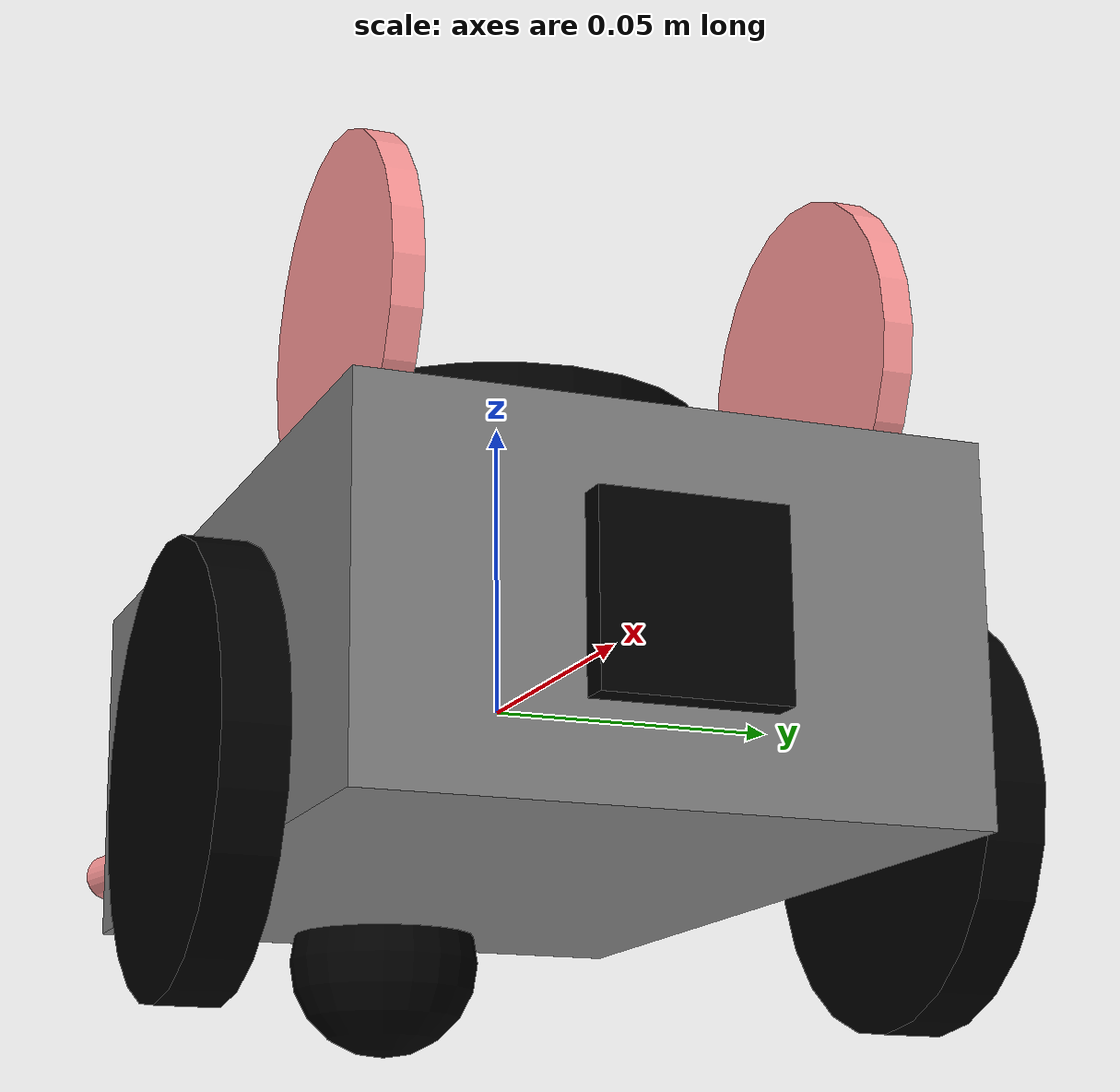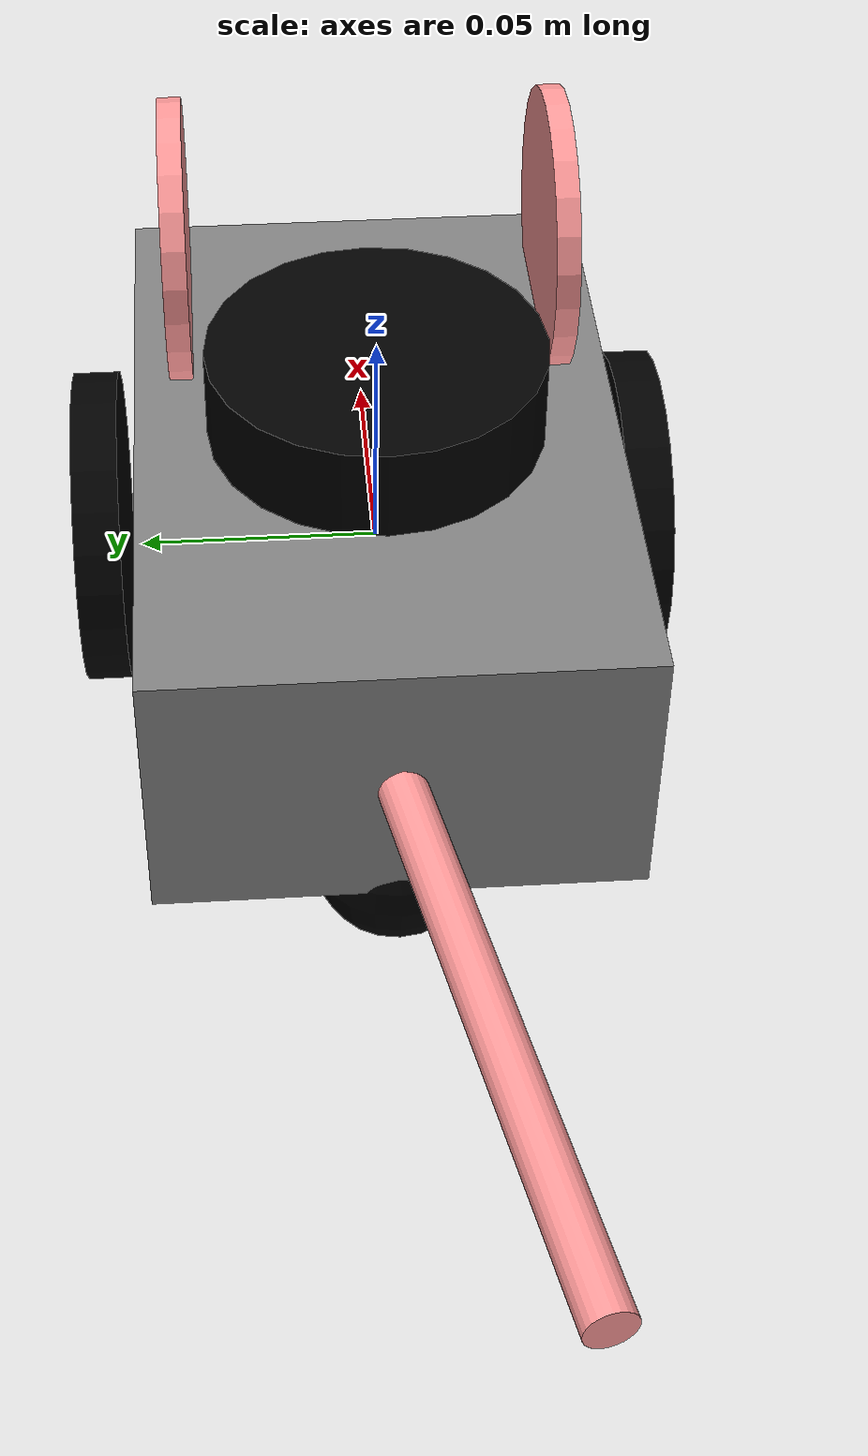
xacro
<?xml version="1.0"?>
<robot name="squeak_mouse" xmlns:xacro="http://www.ros.org/wiki/xacro">

    <xacro:property name="body_len" value="0.15"/>
    <xacro:property name="body_width" value="0.10"/>
    <xacro:property name="body_height" value="0.06"/>
    <xacro:property name="body_mass" value="0.5"/>

    <xacro:property name="wheel_radius" value="0.035"/>
    <xacro:property name="wheel_width" value="0.01"/>
    <xacro:property name="wheel_mass" value="0.1"/>

    <material name="grey">
        <color rgba="0.5 0.5 0.5 1"/>
    </material>
    <material name="pink">
        <color rgba="1 0.6 0.6 1"/> </material>
    <material name="black">
        <color rgba="0 0 0 1"/>
    </material>

    <xacro:macro name="box_inertia" params="m x y z">
        <inertial>
            <mass value="${m}"/>
            <inertia ixx="${m*(y*y+z*z)/12}" ixy="0" ixz="0"
                     iyy="${m*(x*x+z*z)/12}" iyz="0"
                     izz="${m*(x*x+y*y)/12}"/>
        </inertial>
    </xacro:macro>

    <xacro:macro name="cylinder_inertia" params="m r h">
        <inertial>
            <mass value="${m}"/>
            <inertia ixx="${m*(3*r*r+h*h)/12}" ixy="0" ixz="0"
                     iyy="${m*(3*r*r+h*h)/12}" iyz="0"
                     izz="${m*r*r/2}"/>
        </inertial>
    </xacro:macro>

    <xacro:macro name="sphere_inertia" params="m r">
        <inertial>
            <mass value="${m}"/>
            <inertia ixx="${2*m*r*r/5}" ixy="0" ixz="0"
                     iyy="${2*m*r*r/5}" iyz="0"
                     izz="${2*m*r*r/5}"/>
        </inertial>
    </xacro:macro>

    <link name="base_link">
        <visual>
            <geometry><box size="${body_len} ${body_width} ${body_height}"/></geometry>
            <material name="grey"/>
        </visual>
        <collision>
            <geometry><box size="${body_len} ${body_width} ${body_height}"/></geometry>
        </collision>
        <xacro:box_inertia m="${body_mass}" x="${body_len}" y="${body_width}" z="${body_height}"/>
    </link>

    <gazebo reference="base_link">
        <material>Gazebo/Grey</material>
    </gazebo>

    <xacro:macro name="ear" params="prefix y_pos">
        <link name="${prefix}_ear">
            <visual>
                <origin xyz="0 0 0" rpy="1.5707 0 0"/>
                <geometry><cylinder radius="0.03" length="0.005"/></geometry>
                <material name="pink"/>
            </visual>
            <xacro:cylinder_inertia m="0.05" r="0.03" h="0.005"/>
        </link>

        <joint name="${prefix}_ear_joint" type="fixed">
            <parent link="base_link"/>
            <child link="${prefix}_ear"/>
            <origin xyz="0.04 ${y_pos} ${body_height/2 + 0.02}" rpy="0 0 0"/>
        </joint>

        <gazebo reference="${prefix}_ear">
            <material>Gazebo/RedBright</material>
        </gazebo>
    </xacro:macro>

    <xacro:ear prefix="left" y_pos="0.04"/>
    <xacro:ear prefix="right" y_pos="-0.04"/>

    <link name="tail">
        <visual>
            <origin xyz="-0.06 0 0" rpy="0 1.57 0"/> <geometry><cylinder radius="0.005" length="0.12"/></geometry>
            <material name="pink"/>
        </visual>
        <xacro:cylinder_inertia m="0.05" r="0.005" h="0.12"/>
    </link>

    <joint name="tail_joint" type="fixed">
        <parent link="base_link"/>
        <child link="tail"/>
        <origin xyz="-${body_len/2} 0 0" rpy="0 0 0.2"/> </joint>

    <xacro:macro name="wheel" params="prefix y_pos">
        <link name="${prefix}_wheel">
            <visual>
                <origin xyz="0 0 0" rpy="1.5707 0 0"/>
                <geometry><cylinder radius="${wheel_radius}" length="${wheel_width}"/></geometry>
                <material name="black"/>
            </visual>
            <collision>
                <origin xyz="0 0 0" rpy="1.5707 0 0"/>
                <geometry><cylinder radius="${wheel_radius}" length="${wheel_width}"/></geometry>
            </collision>
            <xacro:cylinder_inertia m="${wheel_mass}" r="${wheel_radius}" h="${wheel_width}"/>
        </link>

        <joint name="${prefix}_wheel_joint" type="continuous">
            <parent link="base_link"/>
            <child link="${prefix}_wheel"/>
            <origin xyz="0.03 ${y_pos} -0.02" rpy="0 0 0"/> <axis xyz="0 1 0"/>
        </joint>

        <gazebo reference="${prefix}_wheel">
            <material>Gazebo/Black</material>
        </gazebo>
    </xacro:macro>

    <xacro:wheel prefix="left" y_pos="0.06"/>
    <xacro:wheel prefix="right" y_pos="-0.06"/>

    <link name="caster_wheel">
        <visual>
            <geometry><sphere radius="${wheel_radius/2}"/></geometry>
            <material name="black"/>
        </visual>
        <collision>
            <geometry><sphere radius="${wheel_radius/2}"/></geometry>
        </collision>
        <xacro:sphere_inertia m="0.05" r="${wheel_radius/2}"/>
    </link>

    <joint name="caster_joint" type="fixed">
        <parent link="base_link"/>
        <child link="caster_wheel"/>
        <origin xyz="-0.06 0 -0.035" rpy="0 0 0"/>
    </joint>

    <gazebo reference="caster_wheel">
        <mu1>0.001</mu1>
        <mu2>0.001</mu2>
        <material>Gazebo/Black</material>
    </gazebo>
	<link name="lidar_link">
        <visual>
            <geometry><cylinder radius="0.035" length="0.02"/></geometry>
            <material name="black"/>
        </visual>
        <collision>
            <geometry><cylinder radius="0.035" length="0.02"/></geometry>
        </collision>
        <xacro:cylinder_inertia m="0.1" r="0.035" h="0.02"/>
    </link>

    <joint name="lidar_joint" type="fixed">
        <parent link="base_link"/>
        <child link="lidar_link"/>
        <origin xyz="0 0 ${body_height/2 + 0.01}" rpy="0 0 0"/>
    </joint>

    <gazebo reference="lidar_link">
        <sensor name="lidar" type="gpu_lidar">
            <pose>0 0 0 0 0 0</pose>
            <always_on>true</always_on>
            <visualize>true</visualize>
            <update_rate>10</update_rate>
            <topic>scan</topic>
            <ray>
                <scan>
                    <horizontal>
                        <samples>360</samples>
                        <resolution>1</resolution>
                        <min_angle>-3.14</min_angle>
                        <max_angle>3.14</max_angle>
                    </horizontal>
                </scan>
                <range>
                    <min>0.15</min> <max>12.0</max>
                </range>
            </ray>
        </sensor>
        <material>Gazebo/Black</material>
    </gazebo>

	<link name="camera_link">
        <visual>
            <geometry><box size="0.01 0.03 0.03"/></geometry>
            <material name="black"/>
        </visual>
        <collision>
            <geometry><box size="0.01 0.03 0.03"/></geometry>
        </collision>
        <xacro:box_inertia m="0.05" x="0.01" y="0.03" z="0.03"/>
    </link>

    <joint name="camera_joint" type="fixed">
        <parent link="base_link"/>
        <child link="camera_link"/>
        <origin xyz="${body_len/2} 0 0" rpy="0 0 0"/>
    </joint>

    <gazebo reference="camera_link">
        <sensor name="camera" type="camera">
            <camera>
                <horizontal_fov>1.047</horizontal_fov>
                <image>
                    <width>640</width>
                    <height>480</height>
                </image>
                <clip>
                    <near>0.1</near>
                    <far>100</far>
                </clip>
            </camera>
            <always_on>1</always_on>
            <update_rate>30</update_rate>
            <visualize>true</visualize>
            <topic>camera/image_raw</topic>
        </sensor>
    </gazebo>

	<link name="imu_link">
        <visual><geometry><box size="0.01 0.01 0.01"/></geometry></visual>
        <xacro:box_inertia m="0.01" x="0.01" y="0.01" z="0.01"/>
    </link>

    <joint name="imu_joint" type="fixed">
        <parent link="base_link"/>
        <child link="imu_link"/>
        <origin xyz="0 0 0" rpy="0 0 0"/>
    </joint>

    <gazebo reference="imu_link">
        <sensor name="imu" type="imu">
            <always_on>true</always_on>
            <update_rate>100</update_rate>
            <topic>imu</topic>
        </sensor>
    </gazebo>

	<gazebo>
        <plugin
            filename="gz-sim-diff-drive-system"
            name="gz::sim::systems::DiffDrive">
            <left_joint>left_wheel_joint</left_joint>
            <right_joint>right_wheel_joint</right_joint>
            <wheel_separation>0.12</wheel_separation>
            <wheel_radius>${wheel_radius}</wheel_radius>
            <odom_publish_frequency>50</odom_publish_frequency>
            <topic>cmd_vel</topic>
            <odom_topic>odom</odom_topic>
            <tf_topic>tf</tf_topic>
            <frame_id>odom</frame_id>
            <child_frame_id>base_link</child_frame_id>
        </plugin>
    </gazebo>

</robot>
